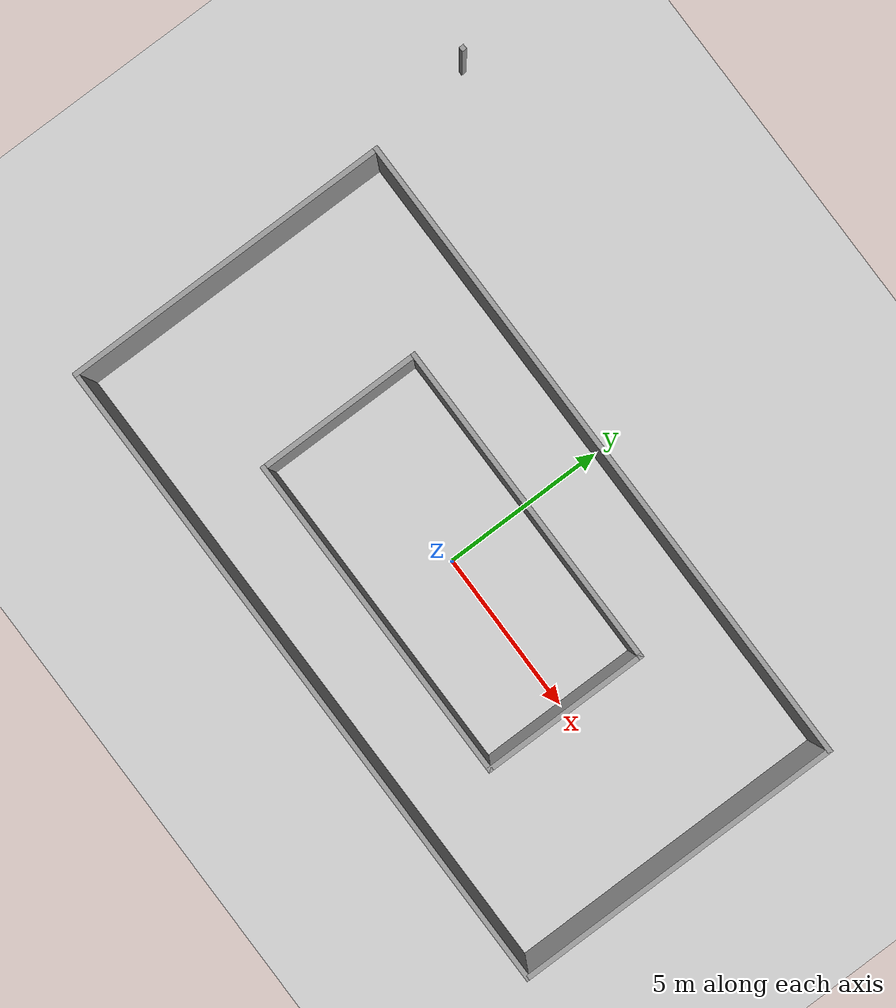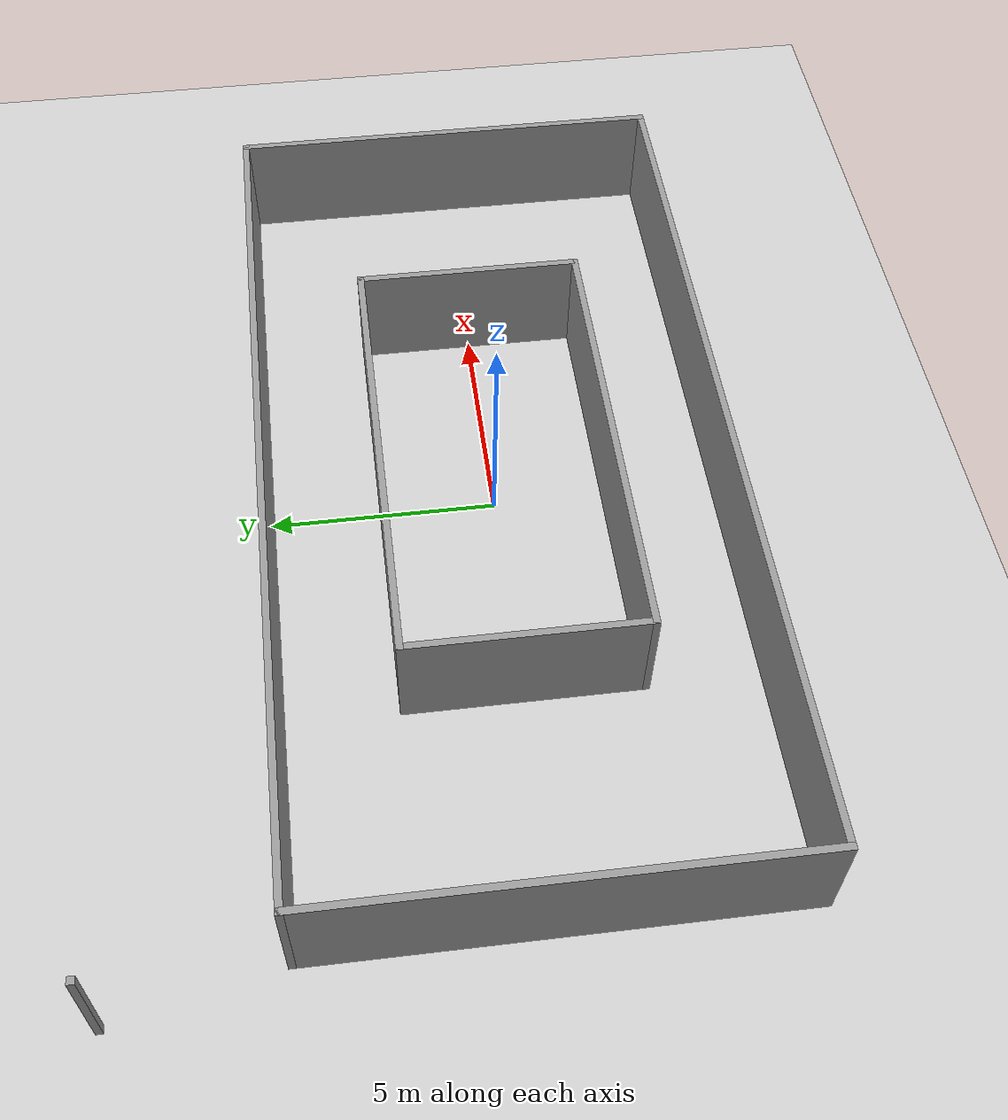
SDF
<sdf version="1.6">
 <world name="default">
  <light name="sun" type="directional">
   <pose>0 0 10 0 -0 0</pose>
   <diffuse>0.8 0.8 0.8 1</diffuse>
   <specular>0.2 0.2 0.2 1</specular>
   <attenuation>
    <range>1000</range>
    <constant>0.9</constant>
    <linear>0.01</linear>
    <quadratic>0.001</quadratic>
   </attenuation>
   <direction>-0.5 0.1 -0.9</direction>
   <spot><inner_angle>0</inner_angle><outer_angle>0</outer_angle><falloff>0</falloff></spot>
  </light>
  <model name="ground_plane">
   <static>1</static>
   <link name="link">
    <collision name="collision">
     <geometry><plane><normal>0 0 1</normal><size>100 100</size></plane></geometry>
     <surface>
      <contact><collide_bitmask>65535</collide_bitmask></contact>
      <friction><ode><mu>100</mu><mu2>50</mu2></ode></friction>
     </surface>
    </collision>
    <visual name="visual">
     <cast_shadows>0</cast_shadows>
     <geometry><plane><normal>0 0 1</normal><size>100 100</size></plane></geometry>
     <material>
      <script><uri>file://media/materials/scripts/gazebo.material</uri><name>Gazebo/Grey</name></script>
     </material>
    </visual>
   </link>
  </model>
  <gravity>0 0 -9.8</gravity>
  <magnetic_field>6e-06 2.3e-05 -4.2e-05</magnetic_field>
  <atmosphere type="adiabatic"/>
  <physics type="ode">
   <max_step_size>0.001</max_step_size>
   <real_time_factor>1</real_time_factor>
   <real_time_update_rate>1000</real_time_update_rate>
  </physics>
  <scene><ambient>0.4 0.4 0.4 1</ambient><background>0.7 0.7 0.7 1</background><shadows>1</shadows></scene>
  <spherical_coordinates>
   <surface_model>EARTH_WGS84</surface_model>
   <latitude_deg>0</latitude_deg>
   <longitude_deg>0</longitude_deg>
   <elevation>0</elevation>
   <heading_deg>0</heading_deg>
  </spherical_coordinates>
  <model name="track">
   <pose>-0.389999 1.73 0 0 -0 0</pose>
   <link name="Wall_38">
    <collision name="Wall_38_Collision">
     <geometry><box><size>20.15 0.15 2.5</size></box></geometry>
     <pose>0 0 1.25 0 -0 0</pose>
    </collision>
    <visual name="Wall_38_Visual">
     <pose>0 0 1.25 0 -0 0</pose>
     <geometry><box><size>20.15 0.15 2.5</size></box></geometry>
     <material>
      <script><uri>file://media/materials/scripts/gazebo.material</uri><name>Gazebo/Grey</name></script>
      <ambient>1 1 1 1</ambient>
     </material>
     <meta><layer>0</layer></meta>
    </visual>
    <pose>0.389999 3.27 0 0 -0 0</pose>
   </link>
   <link name="Wall_41">
    <collision name="Wall_41_Collision">
     <geometry><box><size>20.15 0.15 2.5</size></box></geometry>
     <pose>0 0 1.25 0 -0 0</pose>
    </collision>
    <visual name="Wall_41_Visual">
     <pose>0 0 1.25 0 -0 0</pose>
     <geometry><box><size>20.15 0.15 2.5</size></box></geometry>
     <material>
      <script><uri>file://media/materials/scripts/gazebo.material</uri><name>Gazebo/Grey</name></script>
      <ambient>1 1 1 1</ambient>
     </material>
     <meta><layer>0</layer></meta>
    </visual>
    <pose>0.389999 -6.73 0 0 -0 0</pose>
   </link>
   <link name="Wall_44">
    <collision name="Wall_44_Collision">
     <geometry><box><size>10.15 0.15 2.5</size></box></geometry>
     <pose>0 0 1.25 0 -0 0</pose>
    </collision>
    <visual name="Wall_44_Visual">
     <pose>0 0 1.25 0 -0 0</pose>
     <geometry><box><size>10.15 0.15 2.5</size></box></geometry>
     <material>
      <script><uri>file://media/materials/scripts/gazebo.material</uri><name>Gazebo/Grey</name></script>
      <ambient>1 1 1 1</ambient>
     </material>
     <meta><layer>0</layer></meta>
    </visual>
    <pose>-9.61 -1.73 0 0 -0 -1.5708</pose>
   </link>
   <link name="Wall_46">
    <collision name="Wall_46_Collision">
     <geometry><box><size>10.15 0.15 2.5</size></box></geometry>
     <pose>0 0 1.25 0 -0 0</pose>
    </collision>
    <visual name="Wall_46_Visual">
     <pose>0 0 1.25 0 -0 0</pose>
     <geometry><box><size>10.15 0.15 2.5</size></box></geometry>
     <material>
      <script><uri>file://media/materials/scripts/gazebo.material</uri><name>Gazebo/Grey</name></script>
      <ambient>1 1 1 1</ambient>
     </material>
     <meta><layer>0</layer></meta>
    </visual>
    <pose>10.39 -1.73 0 0 -0 -1.5708</pose>
   </link>
   <link name="Wall_50">
    <collision name="Wall_50_Collision">
     <geometry><box><size>5.15 0.15 2.5</size></box></geometry>
     <pose>0 0 1.25 0 -0 0</pose>
    </collision>
    <visual name="Wall_50_Visual">
     <pose>0 0 1.25 0 -0 0</pose>
     <geometry><box><size>5.15 0.15 2.5</size></box></geometry>
     <material>
      <script><uri>file://media/materials/scripts/gazebo.material</uri><name>Gazebo/Grey</name></script>
      <ambient>1 1 1 1</ambient>
     </material>
     <meta><layer>0</layer></meta>
    </visual>
    <pose>-4.61 -1.73 0 0 -0 1.5708</pose>
   </link>
   <link name="Wall_52">
    <collision name="Wall_52_Collision">
     <geometry><box><size>10.15 0.15 2.5</size></box></geometry>
     <pose>0 0 1.25 0 -0 0</pose>
    </collision>
    <visual name="Wall_52_Visual">
     <pose>0 0 1.25 0 -0 0</pose>
     <geometry><box><size>10.15 0.15 2.5</size></box></geometry>
     <material>
      <script><uri>file://media/materials/scripts/gazebo.material</uri><name>Gazebo/Grey</name></script>
      <ambient>1 1 1 1</ambient>
     </material>
     <meta><layer>0</layer></meta>
    </visual>
    <pose>0.389999 -4.23 0 0 -0 0</pose>
   </link>
   <link name="Wall_54">
    <collision name="Wall_54_Collision">
     <geometry><box><size>5.15 0.15 2.5</size></box></geometry>
     <pose>0 0 1.25 0 -0 0</pose>
    </collision>
    <visual name="Wall_54_Visual">
     <pose>0 0 1.25 0 -0 0</pose>
     <geometry><box><size>5.15 0.15 2.5</size></box></geometry>
     <material>
      <script><uri>file://media/materials/scripts/gazebo.material</uri><name>Gazebo/Grey</name></script>
      <ambient>1 1 1 1</ambient>
     </material>
     <meta><layer>0</layer></meta>
    </visual>
    <pose>5.39 -1.73 0 0 -0 1.5708</pose>
   </link>
   <link name="Wall_56">
    <collision name="Wall_56_Collision">
     <geometry><box><size>10.15 0.15 2.5</size></box></geometry>
     <pose>0 0 1.25 0 -0 0</pose>
    </collision>
    <visual name="Wall_56_Visual">
     <pose>0 0 1.25 0 -0 0</pose>
     <geometry><box><size>10.15 0.15 2.5</size></box></geometry>
     <material>
      <script><uri>file://media/materials/scripts/gazebo.material</uri><name>Gazebo/Grey</name></script>
      <ambient>1 1 1 1</ambient>
     </material>
     <meta><layer>0</layer></meta>
    </visual>
    <pose>0.389999 0.77 0 0 -0 0</pose>
   </link>
   <link name="Wall_6">
    <collision name="Wall_6_Collision">
     <geometry><box><size>0.15 0.15 2.5</size></box></geometry>
     <pose>0 0 1.25 0 -0 0</pose>
    </collision>
    <visual name="Wall_6_Visual">
     <pose>0 0 1.25 0 -0 0</pose>
     <geometry><box><size>0.15 0.15 2.5</size></box></geometry>
     <material>
      <script><uri>file://media/materials/scripts/gazebo.material</uri><name>Gazebo/Grey</name></script>
      <ambient>1 1 1 1</ambient>
     </material>
     <meta><layer>0</layer></meta>
    </visual>
    <pose>-10.39 6.73 0 0 -0 0</pose>
   </link>
   <static>1</static>
  </model>
 </world>
</sdf>
